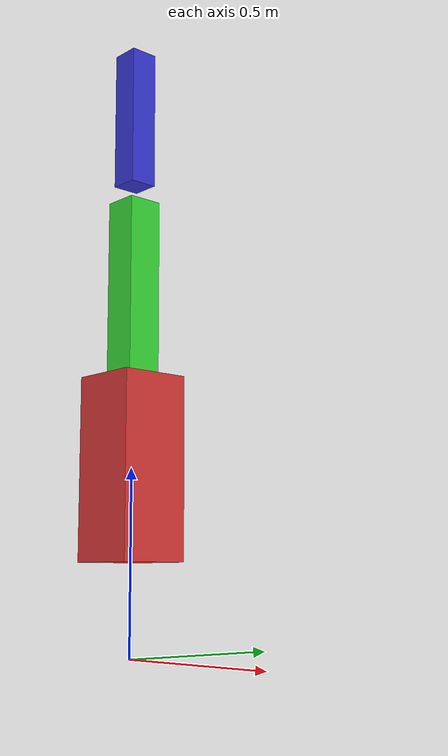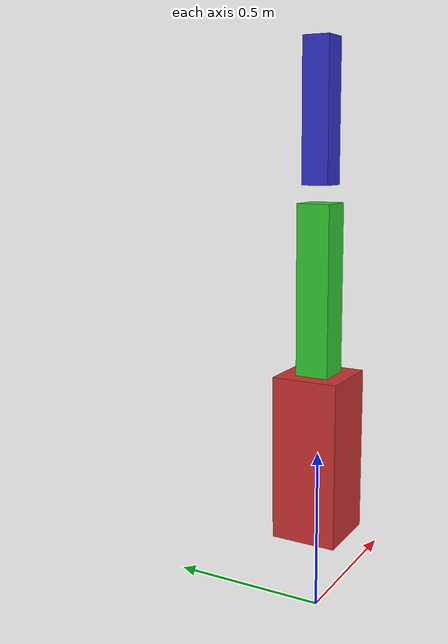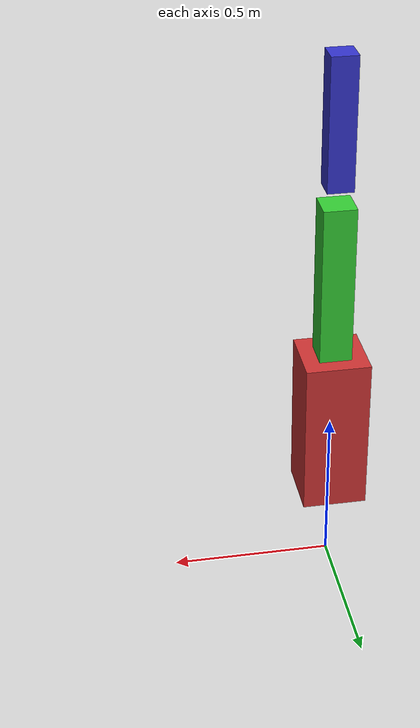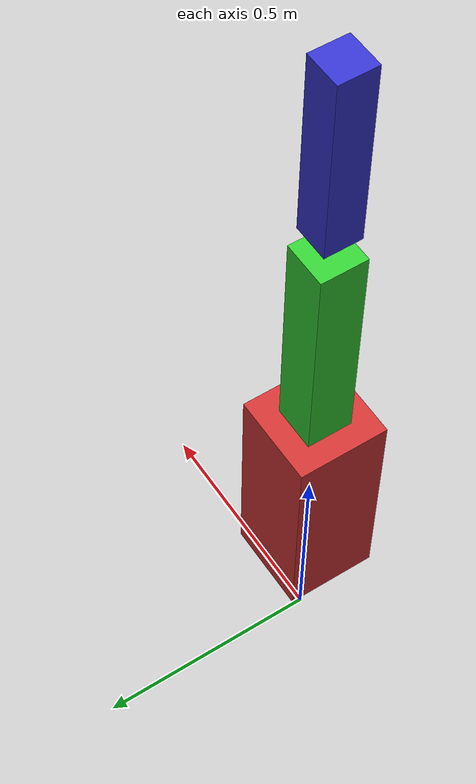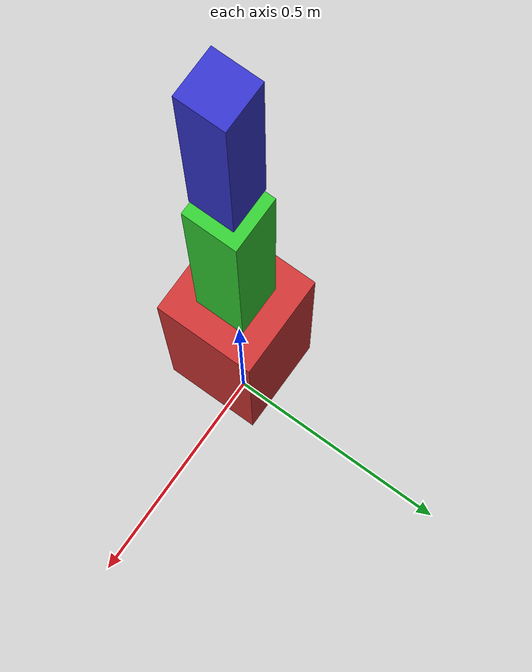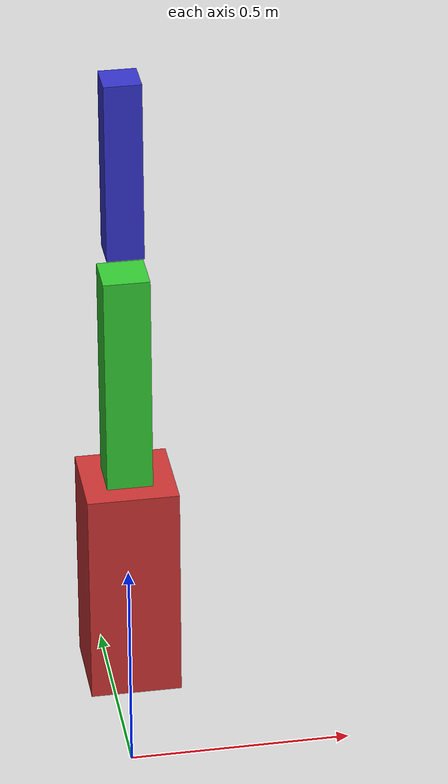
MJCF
<mujoco model="simple_robot">
  <compiler angle="radian" autolimits="true"/>

  <default>
    <joint damping="0.1" armature="0.01"/>
    <geom contype="1" conaffinity="1" friction="0.7 0.1 0.1"/>
  </default>

  <worldbody>
    <!-- Base link -->
    <body name="base" pos="0 0 0.5">
      <joint name="joint1" type="hinge" axis="0 0 1" range="-3.14 3.14"/>
      <geom name="base_geom" type="box" size="0.1 0.1 0.25" rgba="0.8 0.2 0.2 1"/>

      <!-- Link 1 -->
      <body name="link1" pos="0 0 0.5">
        <joint name="joint2" type="slide" axis="1 0 0" range="-0.5 0.5"/>
        <geom name="link1_geom" type="box" size="0.05 0.05 0.25" rgba="0.2 0.8 0.2 1"/>

        <!-- Link 2 (end-effector) -->
        <body name="link2" pos="0 0 0.5">
          <joint name="joint3" type="hinge" axis="0 1 0" range="-1.57 1.57"/>
          <geom name="link2_geom" type="box" size="0.04 0.04 0.2" rgba="0.2 0.2 0.8 1"/>
        </body>
      </body>
    </body>
  </worldbody>
</mujoco>
